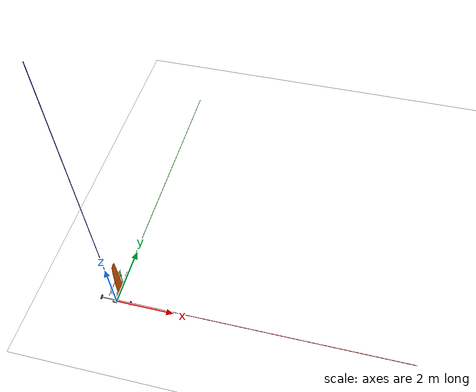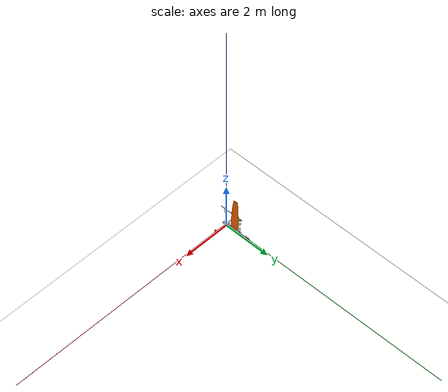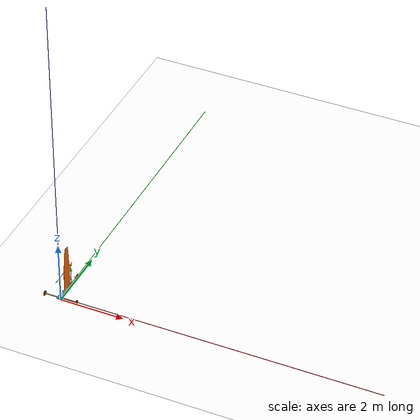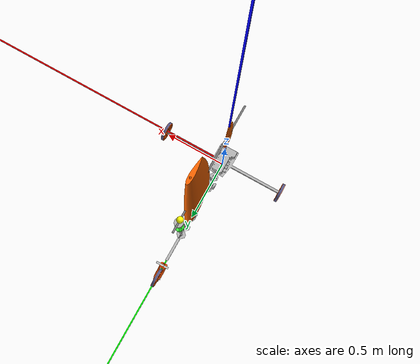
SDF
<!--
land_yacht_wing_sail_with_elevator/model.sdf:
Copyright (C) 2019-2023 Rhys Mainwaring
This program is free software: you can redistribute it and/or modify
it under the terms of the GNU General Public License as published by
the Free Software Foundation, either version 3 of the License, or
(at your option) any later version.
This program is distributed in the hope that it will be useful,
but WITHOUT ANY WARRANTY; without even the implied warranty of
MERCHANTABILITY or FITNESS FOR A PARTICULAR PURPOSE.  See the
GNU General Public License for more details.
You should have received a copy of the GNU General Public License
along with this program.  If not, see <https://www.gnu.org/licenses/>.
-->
<?xml version="1.0" ?>

<sdf version="1.6">
  <world name="beach">
    <physics name="1ms" type="ignored">
      <max_step_size>0.001</max_step_size>
      <real_time_factor>1</real_time_factor>
    </physics>

    <plugin filename="gz-sim-physics-system"
        name="gz::sim::systems::Physics">
    </plugin>
    <plugin filename="gz-sim-forcetorque-system"
        name="gz::sim::systems::ForceTorque">
    </plugin>
    <plugin filename="gz-sim-sensors-system"
        name="gz::sim::systems::Sensors">
      <render_engine>ogre2</render_engine>
      <background_color>0.8 0.8 0.8</background_color>
    </plugin>
    <plugin filename="gz-sim-scene-broadcaster-system"
        name="gz::sim::systems::SceneBroadcaster">
    </plugin>
    <plugin filename="gz-sim-user-commands-system"
        name="gz::sim::systems::UserCommands">
    </plugin>
    <plugin filename="gz-sim-imu-system"
        name="gz::sim::systems::Imu">
    </plugin>
    <plugin filename="asv_sim2-anemometer-system"
      name="gz::sim::systems::Anemometer">
    </plugin>

    <scene>
      <ambient>1.0 1.0 1.0</ambient>
      <background>0.8 0.8 0.8</background>
      <sky></sky>
    </scene>

    <spherical_coordinates>
      <latitude_deg>51.56991349023042</latitude_deg>
      <longitude_deg>-4.033693921107272</longitude_deg>
      <elevation>10.0</elevation>
      <heading_deg>0</heading_deg>
      <surface_model>EARTH_WGS84</surface_model>
    </spherical_coordinates>

    <light type="directional" name="sun">
      <cast_shadows>true</cast_shadows>
      <pose>0 0 10 0 0 0</pose>
      <diffuse>0.8 0.8 0.8 1</diffuse>
      <specular>0.6 0.6 0.6 1</specular>
      <direction>-0.5 0.1 -0.9</direction>
    </light>

    <!-- Wind: 7 m/s from the north (ENU) -->
    <wind>
      <linear_velocity>0 -7 0</linear_velocity>
    </wind>

    <model name="axes">
      <static>1</static>
      <link name="link">
        <visual name="r">
          <cast_shadows>0</cast_shadows>
          <pose>5 0 0.1 0 0 0</pose>
          <geometry>
            <box>
              <size>10 0.01 0.01</size>
            </box>
          </geometry>
          <material>
            <ambient>1 0 0 1</ambient>
            <diffuse>1 0 0 1</diffuse>
            <emissive>1 0 0 1</emissive>
            <specular>0.5 0.5 0.5 1</specular>
          </material>
        </visual>
        <visual name="g">
          <cast_shadows>0</cast_shadows>
          <pose>0 5 0.1 0 0 0</pose>
          <geometry>
            <box>
              <size>0.01 10 0.01</size>
            </box>
          </geometry>
          <material>
            <ambient>0 1 0 1</ambient>
            <diffuse>0 1 0 1</diffuse>
            <emissive>0 1 0 1</emissive>
            <specular>0.5 0.5 0.5 1</specular>
          </material>
        </visual>
        <visual name="b">
          <cast_shadows>0</cast_shadows>
          <pose>0 0 5.1 0 0 0</pose>
          <geometry>
            <box>
              <size>0.01 0.01 10</size>
            </box>
          </geometry>
          <material>
            <ambient>0 0 1 1</ambient>
            <diffuse>0 0 1 1</diffuse>
            <emissive>0 0 1 1</emissive>
            <specular>0.5 0.5 0.5 1</specular>
          </material>
        </visual>
      </link>
    </model>

    <model name="beach">
      <static>true</static>
      <link name="link">
        <collision name="collision">
          <geometry>
            <plane>
              <normal>0 0 1</normal>
              <size>500 500</size>
            </plane>
          </geometry>
          <surface>
            <contact>
              <collide_bitmask>0xffff</collide_bitmask>
            </contact>
            <friction>
              <ode>
                <mu>200</mu>
                <mu2>10</mu2>
              </ode>
            </friction>
          </surface>
        </collision>
        <visual name="visual">
          <cast_shadows>false</cast_shadows>
          <geometry>
            <plane>
              <normal>0 0 1</normal>
              <size>500 500</size>
            </plane>
          </geometry>
          <material>
            <ambient>1 1 1</ambient>
            <diffuse>1 1 1</diffuse>
            <specular>0.01 0.01 0.01</specular>
            <pbr>
              <metal>
                <albedo_map>model://land_yacht_base/materials/textures/beach_sand.jpg</albedo_map>
                <metalness>0</metalness>
                <roughness>1</roughness>
              </metal>
            </pbr>
          </material>
        </visual>
      </link>
    </model>

    <model name="land_yacht_with_ardupilot">
      <pose>0 0 0.08 0 0 1.57079632</pose>

      <include>
        <pose>0 0 0 0 0 0</pose>
        <uri>model://land_yacht_wing_sail_with_elevator</uri>
        <name>land_yacht</name>
      </include>

      <plugin filename="gz-sim-joint-state-publisher-system"
        name="gz::sim::systems::JointStatePublisher">
      </plugin>

      <plugin filename="gz-sim-joint-position-controller-system"
          name="gz::sim::systems::JointPositionController">
        <joint_name>land_yacht::land_yacht_base::steering_joint</joint_name>
        <topic>/steering_joint/cmd_pos</topic>
        <p_gain>2</p_gain>
        <i_gain>0.0</i_gain>
        <d_gain>0.1</d_gain>
        <i_max>1</i_max>
        <i_min>-1</i_min>
        <cmd_max>10</cmd_max>
        <cmd_min>-10</cmd_min>
      </plugin>

      <plugin filename="gz-sim-joint-position-controller-system"
          name="gz::sim::systems::JointPositionController">
        <joint_name>land_yacht::wing_sail::wing_sail_elevator_joint</joint_name>
        <topic>/wing_sail_elevator_joint/cmd_pos</topic>
        <p_gain>1</p_gain>
        <i_gain>0.0</i_gain>
        <d_gain>0.1</d_gain>
        <i_max>1</i_max>
        <i_min>-1</i_min>
        <cmd_max>10</cmd_max>
        <cmd_min>-10</cmd_min>
      </plugin>

      <plugin name="ArduPilotPlugin"
          filename="ArduPilotPlugin">
        <fdm_addr>127.0.0.1</fdm_addr>
        <fdm_port_in>9002</fdm_port_in>
        <connectionTimeoutMaxCount>5</connectionTimeoutMaxCount>
        <lock_step>1</lock_step>
        <gazeboXYZToNED>0 0 0 3.141593 0 1.57079632</gazeboXYZToNED>
        <modelXYZToAirplaneXForwardZDown>0 0 0 3.141593 0 0</modelXYZToAirplaneXForwardZDown>
        <imuName>land_yacht::land_yacht_base::base_link::imu_sensor</imuName>
        <anemometer>land_yacht::land_yacht_base::base_link::anemometer</anemometer>

        <!-- Control / channels -->
        <control channel="0">
          <jointName>land_yacht::land_yacht_base::steering_joint</jointName>
          <useForce>1</useForce>
          <multiplier>-1.570796</multiplier>
          <offset>-0.5</offset>
          <servo_min>1000</servo_min>
          <servo_max>2000</servo_max>
          <type>COMMAND</type>
          <cmd_topic>/steering_joint/cmd_pos</cmd_topic>
        </control>

        <control channel="3">
          <jointName>land_yacht::wing_sail::wing_sail_elevator_joint</jointName>
          <useForce>1</useForce>
          <multiplier>1.570796</multiplier>
          <offset>-0.5</offset>
          <servo_min>1000</servo_min>
          <servo_max>2000</servo_max>
          <type>COMMAND</type>
          <cmd_topic>/wing_sail_elevator_joint/cmd_pos</cmd_topic>
        </control>

      </plugin>
    </model>

  </world>
</sdf>

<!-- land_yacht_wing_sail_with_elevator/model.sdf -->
<sdf version="1.6">
  <model name="land_yacht_wing_sail_with_elevator">

    <!-- Land yacht base -->
    <include>
      <uri>model://land_yacht_base</uri>
      <name>land_yacht_base</name>
      <pose>0 0 0 0 0 0</pose>
    </include>

    <!-- Wing sail -->
    <include>
      <pose>0.5 0 0.1 0 0 0</pose>
      <uri>model://wing_sail_naca0018_1.4m_with_elevator</uri>
      <name>wing_sail</name>
    </include>

    <joint type="revolute" name="wing_sail_joint">
      <child>wing_sail::wing_sail_link</child>
      <parent>land_yacht_base::base_link</parent>
      <axis>
        <xyz>0 0 1</xyz>
        <dynamics>
          <damping>0.01</damping>
        </dynamics>
        <limit>
          <lower>-1.0E8</lower>
          <upper>1.0E8</upper>
        </limit>
      </axis>
    </joint>

  </model>
</sdf>

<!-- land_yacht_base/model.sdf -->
<sdf version="1.6">
  <model name="land_yacht_base">

    <!-- Base -->
    <link name="base_link">
      <!-- Main beam -->
      <visual name="base">
        <geometry>
          <mesh>
            <uri>model://land_yacht_base/meshes/land_yacht_base.dae</uri>
          </mesh>
        </geometry>
      </visual>

      <!-- Main beam -->
      <collision name="main_beam_collision">
        <pose>0.4 0 0.025 0 0 0</pose>
        <geometry>
          <box>
            <size>1.0 0.020 0.020</size>
          </box>
        </geometry>
      </collision>

      <!-- Cross beam -->
      <collision name="cross_beam_collision">
        <pose>0 0 0 0 0 0</pose>
        <geometry>
          <box>
            <size>0.020 1.0 0.020</size>
          </box>
        </geometry>
      </collision>

      <visual name="imu_visual">
        <pose>0.05 0 0.06 0 0 0</pose>
        <geometry>
          <box>
            <size>0.06 0.04 0.01</size>
          </box>
        </geometry>
        <material>
          <ambient>0.0 1.0 0.0 0.7</ambient>
          <diffuse>0.0 1.0 0.0 0.7</diffuse>
          <specular>0.1 0.1 0.1 0.7</specular>
        </material>
      </visual>

      <sensor name="imu_sensor" type="imu">
        <pose>0.05 0 0.06 3.141593 0 0</pose>
        <always_on>1</always_on>
        <update_rate>1000</update_rate>
        <visualize>1</visualize>
      </sensor>

      <visual name="anemometer_visual">
        <pose>0.67 0 0.5165 0 0 0</pose>
        <geometry>
          <cylinder>
            <radius>0.034</radius>
            <length>0.04</length>
          </cylinder>
        </geometry>
        <material>
          <ambient>0.0 1.0 0.0 0.7</ambient>
          <diffuse>0.0 1.0 0.0 0.7</diffuse>
          <specular>0.1 0.1 0.1 0.7</specular>
        </material>
      </visual>

      <sensor name="anemometer" type="custom" gz:type="anemometer">
        <pose>0.67 0 0.5165 0 0 0</pose>
        <always_on>1</always_on>
        <update_rate>30</update_rate>
        <gz:anemometer>
          <noise type="gaussian">
            <mean>0</mean>
            <stddev>0</stddev>
          </noise>
        </gz:anemometer>
      </sensor>

      <inertial>
        <pose>0.15 0 0.04 0 0 0</pose>
        <mass>3.544</mass>
        <inertia>
          <ixx>0.008623733</ixx>
          <ixy>0</ixy>
          <iyy>0.019521533</iyy>
          <iyz>0</iyz>
          <izz>0.026018867</izz>
        </inertia>
      </inertial>
    </link>

    <!-- Right wheel -->
    <link name="right_wheel_link">
      <pose>0 -0.512 0 1.570796327 0 0</pose>
      <visual name="right_wheel_visual">
        <geometry>
          <mesh>
            <uri>model://land_yacht_base/meshes/sand_wheel.dae</uri>
          </mesh>
        </geometry>
      </visual>
      <collision name="right_wheel_collision">
        <geometry>
          <cylinder>
            <radius>0.0750</radius>
            <length>0.0235</length>
          </cylinder>
        </geometry>
      </collision>
      <inertial>
        <mass>0.112</mass>
        <inertia>
          <ixx>0.000162654</ixx>
          <ixy>0</ixy>
          <iyy>0.000162654</iyy>
          <iyz>0</iyz>
          <izz>0.000315</izz>
        </inertia>
      </inertial>
    </link>

    <joint type="revolute" name="right_wheel_joint">
      <pose>0 0 0 0 0 0</pose>
      <child>right_wheel_link</child>
      <parent>base_link</parent>
      <axis>
        <xyz>0 0 1</xyz>
        <dynamics>
          <damping>0.001</damping>
        </dynamics>
        <limit>
          <lower>-1.0E8</lower>
          <upper>1.0E8</upper>
        </limit>
      </axis>
    </joint>

    <!-- Left wheel -->
    <link name="left_wheel_link">
      <pose>0 0.512 0 1.570796327 0 0</pose>
      <visual name="left_wheel_visual">
        <geometry>
          <mesh>
            <uri>model://land_yacht_base/meshes/sand_wheel.dae</uri>
          </mesh>
        </geometry>
      </visual>
      <collision name="left_wheel_collision">
        <geometry>
          <cylinder>
            <radius>0.0750</radius>
            <length>0.0235</length>
          </cylinder>
        </geometry>
      </collision>
      <inertial>
        <mass>0.112</mass>
        <inertia>
          <ixx>0.000162654</ixx>
          <ixy>0</ixy>
          <iyy>0.000162654</iyy>
          <iyz>0</iyz>
          <izz>0.000315</izz>
        </inertia>
      </inertial>
    </link>

    <joint type="revolute" name="left_wheel_joint">
      <pose>0 0 0 0 0 0</pose>
      <child>left_wheel_link</child>
      <parent>base_link</parent>
      <axis>
        <xyz>0 0 1</xyz>
        <dynamics>
          <damping>0.001</damping>
        </dynamics>
        <limit>
          <lower>-1.0E8</lower>
          <upper>1.0E8</upper>
        </limit>
      </axis>
    </joint>

    <!-- Steering unit -->
    <link name="steering_link">
      <pose>1.05 0 0 0 0 0</pose>

      <visual name="steering_visual">
        <pose>0 0 0 0 0 0</pose>
        <geometry>
          <mesh>
            <uri>model://land_yacht_base/meshes/land_yacht_forks_v4.dae</uri>
          </mesh>
        </geometry>
      </visual>
      <collision name="steering_collision">
        <pose>-0.05 0 0.01 0 0 0</pose>
        <geometry>
          <box>
            <size>0.14 0.05 0.05</size>
          </box>
        </geometry>
      </collision>

      <inertial>
        <pose>-0.05 0 0.01 0 0 0</pose>
        <mass>0.073</mass>
        <inertia>
          <ixx>3.04167E-05</ixx>
          <ixy>0</ixy>
          <iyy>0.000134442</iyy>
          <iyz>0</iyz>
          <izz>0.000134442</izz>
        </inertia>
      </inertial>
    </link>

    <joint type="revolute" name="steering_joint">
      <pose>-0.114 0 0.045 0 0 0</pose>
      <child>steering_link</child>
      <parent>base_link</parent>
      <axis>
        <xyz>-1 0 0.700207538</xyz>
        <dynamics>
          <damping>0.01</damping>
        </dynamics>
        <limit>
          <lower>-0.8</lower>
          <upper>0.8</upper>
        </limit>
      </axis>
    </joint>

    <!-- Front wheel -->
    <link name="front_wheel_link">
      <pose>1.05 0 0 1.570796327 0 0</pose>
      <visual name="front_wheel_visual">
        <geometry>
          <mesh>
            <uri>model://land_yacht_base/meshes/sand_wheel.dae</uri>
          </mesh>
        </geometry>
      </visual>
      <collision name="front_wheel_collision">
        <geometry>
          <cylinder>
            <radius>0.0750</radius>
            <length>0.0235</length>
          </cylinder>
        </geometry>
        <surface>
          <friction>
            <ode>
              <mu>1.0</mu>
              <mu2>1.0</mu2>
              <fdir1>1 0 0</fdir1>
            </ode>
          </friction>
        </surface>
      </collision>
      <inertial>
        <mass>0.112</mass>
        <inertia>
          <ixx>0.000162654</ixx>
          <ixy>0</ixy>
          <iyy>0.000162654</iyy>
          <iyz>0</iyz>
          <izz>0.000315</izz>
        </inertia>
      </inertial>
    </link>

    <joint type="revolute" name="front_wheel_joint">
      <pose>0 0 0 0 0 0</pose>
      <child>front_wheel_link</child>
      <parent>steering_link</parent>
      <axis>
        <xyz>0 0 1</xyz>
        <dynamics>
          <damping>0.01</damping>
        </dynamics>
        <limit>
          <lower>-1.0E8</lower>
          <upper>1.0E8</upper>
        </limit>
      </axis>
      <sensor name="force_torque_sensor" type="force_torque">
        <always_on>true</always_on>
        <update_rate>30</update_rate>
        <visualize>true</visualize>
      </sensor>
    </joint>

    <!-- Thruster -->

  </model>
</sdf>

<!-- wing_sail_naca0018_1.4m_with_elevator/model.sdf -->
<sdf version="1.6">
  <model name="wing_sail_naca0018_1.4m_with_elevator">

    <!-- Plugins -->

    <!--
      Linear approximations to lift / drag coefficient curves for
      NACA 0018 airfoil.
      Foil stalls at approx. 14 degrees (lower in the linear approx.)
    -->
    <plugin name="gz::sim::systems::SailLiftDrag"
        filename="asv_sim2-sail-lift-drag-system">
      <a0>0.0</a0>
      <cla>6.2832</cla>
      <alpha_stall>0.1592</alpha_stall>
      <cla_stall>-0.7083</cla_stall>
      <cda>0.63662</cda>
      <area>0.4858</area>
      <fluid_density>1.2</fluid_density>
      <forward>1 0 0</forward>
      <upward>0 1 0</upward>
      <cp>-0.05 0.0 0.65</cp>
      <link_name>wing_sail_link</link_name>
      <radial_symmetry>true</radial_symmetry>
      <topic>lift_drag</topic>
    </plugin>

    <plugin name="gz::sim::systems::SailLiftDrag"
        filename="asv_sim2-sail-lift-drag-system">
      <a0>0.0</a0>
      <cla>6.2832</cla>
      <alpha_stall>0.1592</alpha_stall>
      <cla_stall>-0.7083</cla_stall>
      <cda>0.63662</cda>
      <area>0.04858</area>
      <fluid_density>1.2</fluid_density>
      <forward>1 0 0</forward>
      <upward>0 1 0</upward>
      <cp>-0.015 0.0 0.2</cp>
      <link_name>wing_sail_elevator_link</link_name>
      <radial_symmetry>true</radial_symmetry>
      <topic>lift_drag</topic>
    </plugin>

    <!-- Wing sail -->
    <link name="wing_sail_link">
      <inertial>
        <pose>-0.05 0.0 0.65 0 0 0</pose>
        <mass>2.0</mass>
        <inertia>
          <ixx>0.326733333</ixx>
          <ixy>0</ixy>
          <iyy>0.348266667</iyy>
          <iyz>0</iyz>
          <izz>0.021666667</izz>
        </inertia>
      </inertial>
      <collision name="wing_sail_collision">
        <pose>-0.09 0 0.7 0 0 0</pose>
        <geometry>
          <box>
            <size>0.35 0.07 1.4</size>
          </box>
        </geometry>
      </collision>
      <visual name="wing_sail_visual">
        <geometry>
          <mesh>
            <uri>model://wing_sail_naca0018_1.4m_with_elevator/meshes/wing_sail.stl</uri>
          </mesh>
        </geometry>
        <material>
          <ambient>1.0 0.4 0.0 0.9</ambient>
          <diffuse>1.0 0.4 0.0 0.9</diffuse>
          <specular>0.1 0.1 0.1 1.0</specular>
        </material>
      </visual>
      <visual name="elevator_spar_visual">
        <pose>-0.25 0 0.65 0 1.570796 0</pose>
        <geometry>
          <cylinder>
            <radius>0.007</radius>
            <length>1.000</length>
          </cylinder>
        </geometry>
        <material>
          <ambient>0.5 0.5 0.5 1.0</ambient>
          <diffuse>0.5 0.5 0.5 1.0</diffuse>
          <specular>0.1 0.1 0.1 1.0</specular>
        </material>
      </visual>
      <visual name="cp_visual">
        <pose>-0.05 0 0.65 0 0 0</pose>
        <geometry>
          <sphere>
            <radius>0.01</radius>
          </sphere>
        </geometry>
        <material>
          <ambient>1.0 0.0 0.0 1.0</ambient>
          <diffuse>1.0 0.0 0.0 1.0</diffuse>
          <specular>0.1 0.1 0.1 1.0</specular>
        </material>
      </visual>
    </link>

    <!-- Wing sail elevator -->
    <link name="wing_sail_elevator_link">
      <pose>-0.5 0 0.45 0 0 0</pose>
      <inertial>
        <pose>-0.015 0.0 0.2 1.570796 1.570796 0</pose>
        <mass>0.0632455</mass>
        <inertia>
          <ixx>6.75281E-05</ixx>
          <ixy>0</ixy>
          <iyy>0.001029888</iyy>
          <iyz>0</iyz>
          <izz>0.001096957</izz>
        </inertia>
      </inertial>
      <collision name="collision">
        <pose>-0.028 0 0.22 0 0 0</pose>
        <geometry>
          <box>
            <size>0.11 0.02 0.44</size>
          </box>
        </geometry>
      </collision>
      <visual name="wing_sail_elevator_visual">
        <geometry>
          <mesh>
            <uri>model://wing_sail_naca0018_1.4m_with_elevator/meshes/wing_sail_elevator.stl</uri>
          </mesh>
        </geometry>
        <material>
          <ambient>1.0 0.4 0.0 0.9</ambient>
          <diffuse>1.0 0.4 0.0 0.9</diffuse>
          <specular>0.1 0.1 0.1 0.9</specular>
        </material>
      </visual>
      <visual name="cp_visual">
        <pose>-0.015 0 0.2 0 0 0</pose>
        <geometry>
          <sphere>
            <radius>0.01</radius>
          </sphere>
        </geometry>
        <material>
          <ambient>1.0 0.0 0.0 1.0</ambient>
          <diffuse>1.0 0.0 0.0 1.0</diffuse>
          <specular>0.1 0.1 0.1 1.0</specular>
        </material>
      </visual>
    </link>

    <joint name="wing_sail_elevator_joint" type="revolute">
      <pose>0 0 0.2 0 0 0</pose>
      <child>wing_sail_elevator_link</child>
      <parent>wing_sail_link</parent>
      <axis>
        <xyz>0 0 1</xyz>
        <dynamics>
          <damping>0.01</damping>
        </dynamics>
        <limit>
          <lower>-1.570796327</lower>
          <upper>1.570796327</upper>
        </limit>
      </axis>
      <sensor name="force_torque_sensor" type="force_torque">
        <always_on>true</always_on>
        <update_rate>30</update_rate>
        <visualize>true</visualize>
      </sensor>
    </joint>

    <!-- Wing sail counterweight -->
    <link name="wing_sail_counterweight_link">
      <pose>0.15 0 0.65 0 0 0</pose>
      <inertial>
        <mass>0.1</mass>
        <inertia>
          <ixx>0.000025</ixx>
          <ixy>0</ixy>
          <iyy>0.000025</iyy>
          <iyz>0</iyz>
          <izz>0.000025</izz>
        </inertia>
      </inertial>
      <collision name="collision">
        <geometry>
          <sphere>
            <radius>0.025</radius>
          </sphere>
        </geometry>
      </collision>
      <visual name="visual">
        <geometry>
          <sphere>
            <radius>0.025</radius>
          </sphere>
        </geometry>
        <material>
          <ambient>1.0 1.0 0.0 1.0</ambient>
          <diffuse>1.0 1.0 0.0 1.0</diffuse>
          <specular>0.1 0.1 0.1 1.0</specular>
        </material>
      </visual>
    </link>

    <joint name="wing_sail_counterweight_joint" type="revolute">
      <child>wing_sail_counterweight_link</child>
      <parent>wing_sail_link</parent>
      <axis>
        <xyz>0 0 1</xyz>
        <dynamics>
          <damping>1.0</damping>
        </dynamics>
        <limit>
          <lower>0</lower>
          <upper>0</upper>
        </limit>
      </axis>
    </joint>

  </model>
</sdf>
